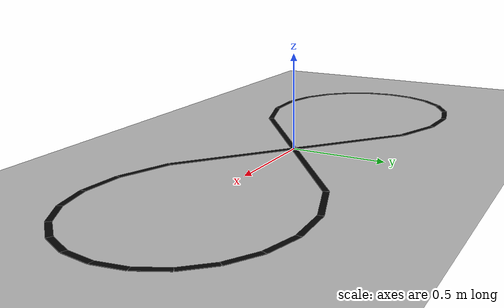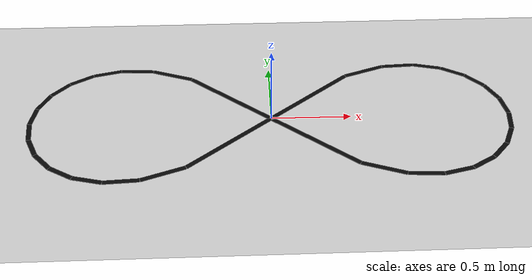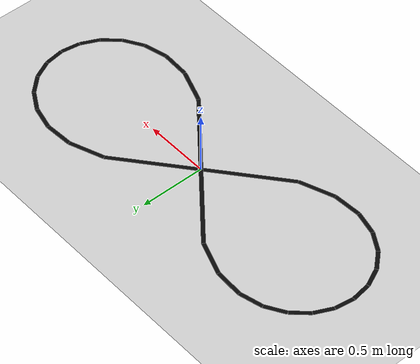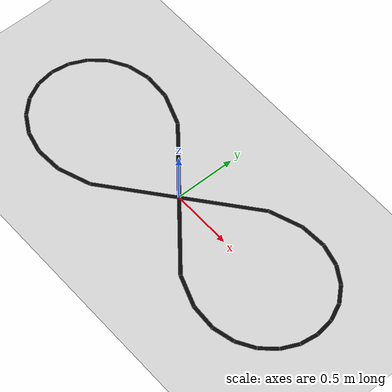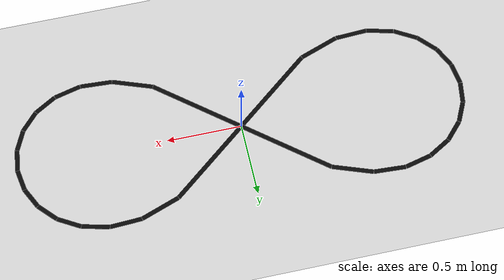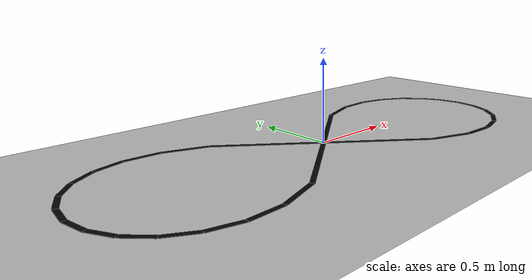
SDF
<?xml version="1.0" ?>
<sdf version="1.9">
  <world name="line_figure8_world">

    <physics name="1ms" type="ignored">
      <max_step_size>0.001</max_step_size>
      <real_time_factor>1.0</real_time_factor>
    </physics>

    <plugin filename="ignition-gazebo-physics-system" name="ignition::gazebo::systems::Physics"/>
    <plugin filename="ignition-gazebo-user-commands-system" name="ignition::gazebo::systems::UserCommands"/>
    <plugin filename="ignition-gazebo-scene-broadcaster-system" name="ignition::gazebo::systems::SceneBroadcaster"/>
    <plugin filename="ignition-gazebo-sensors-system" name="ignition::gazebo::systems::Sensors">
      <render_engine>ogre2</render_engine>
    </plugin>
    <plugin filename="ignition-gazebo-imu-system" name="ignition::gazebo::systems::Imu"/>

    <scene>
      <ambient>0.6 0.6 0.6 1</ambient>
      <background>0.7 0.7 0.75 1</background>
    </scene>

    <light type="directional" name="sun">
      <cast_shadows>true</cast_shadows>
      <pose>0 0 10 0 0 0</pose>
      <diffuse>0.9 0.9 0.9 1</diffuse>
      <specular>0.2 0.2 0.2 1</specular>
      <attenuation>
        <range>1000</range>
        <constant>0.9</constant>
        <linear>0.01</linear>
        <quadratic>0.001</quadratic>
      </attenuation>
      <direction>-0.3 0.1 -0.95</direction>
    </light>

    <!-- Fill light from the opposite side keeps the LAB line threshold stable. -->
    <light type="directional" name="fill">
      <cast_shadows>false</cast_shadows>
      <pose>0 0 5 0 0 0</pose>
      <diffuse>0.4 0.4 0.4 1</diffuse>
      <specular>0.0 0.0 0.0 1</specular>
      <direction>0.6 -0.3 -0.7</direction>
    </light>

    <model name="ground_plane">
      <static>true</static>
      <link name="link">
        <collision name="collision">
          <geometry>
            <plane>
              <normal>0 0 1</normal>
              <size>50 50</size>
            </plane>
          </geometry>
          <surface>
            <friction>
              <ode>
                <mu>1.0</mu>
                <mu2>1.0</mu2>
              </ode>
            </friction>
          </surface>
        </collision>
        <visual name="visual">
          <geometry>
            <plane>
              <normal>0 0 1</normal>
              <size>50 50</size>
            </plane>
          </geometry>
          <material>
            <ambient>0.8 0.8 0.8 1</ambient>
            <diffuse>0.8 0.8 0.8 1</diffuse>
            <specular>0.8 0.8 0.8 1</specular>
          </material>
        </visual>
      </link>
    </model>

    <model name="figure8_line">
      <static>true</static>
      <link name="link">
          <visual name="segment_000">
            <pose>0.256073415 -0.210154020 0.001000000 0 0 -0.687223393</pose>
            <geometry>
              <box><size>0.662535452 0.030000000 0.002000000</size></box>
            </geometry>
            <material>
              <ambient>0.02 0.02 0.02 1</ambient>
              <diffuse>0.03 0.03 0.03 1</diffuse>
              <specular>0.01 0.01 0.01 1</specular>
            </material>
          </visual>
          <visual name="segment_001">
            <pose>0.641842548 -0.467916715 0.001000000 0 0 -0.351808885</pose>
            <geometry>
              <box><size>0.276315509 0.030000000 0.002000000</size></box>
            </geometry>
            <material>
              <ambient>0.02 0.02 0.02 1</ambient>
              <diffuse>0.03 0.03 0.03 1</diffuse>
              <specular>0.01 0.01 0.01 1</specular>
            </material>
          </visual>
          <visual name="segment_002">
            <pose>0.878784620 -0.521284962 0.001000000 0 0 -0.053652606</pose>
            <geometry>
              <box><size>0.214801797 0.030000000 0.002000000</size></box>
            </geometry>
            <material>
              <ambient>0.02 0.02 0.02 1</ambient>
              <diffuse>0.03 0.03 0.03 1</diffuse>
              <specular>0.01 0.01 0.01 1</specular>
            </material>
          </visual>
          <visual name="segment_003">
            <pose>1.075680727 -0.504870113 0.001000000 0 0 0.242478334</pose>
            <geometry>
              <box><size>0.184702824 0.030000000 0.002000000</size></box>
            </geometry>
            <material>
              <ambient>0.02 0.02 0.02 1</ambient>
              <diffuse>0.03 0.03 0.03 1</diffuse>
              <specular>0.01 0.01 0.01 1</specular>
            </material>
          </visual>
          <visual name="segment_004">
            <pose>1.237104455 -0.439869810 0.001000000 0 0 0.537972529</pose>
            <geometry>
              <box><size>0.167159318 0.030000000 0.002000000</size></box>
            </geometry>
            <material>
              <ambient>0.02 0.02 0.02 1</ambient>
              <diffuse>0.03 0.03 0.03 1</diffuse>
              <specular>0.01 0.01 0.01 1</specular>
            </material>
          </visual>
          <visual name="segment_005">
            <pose>1.361477410 -0.339160607 0.001000000 0 0 0.833191517</pose>
            <geometry>
              <box><size>0.156424192 0.030000000 0.002000000</size></box>
            </geometry>
            <material>
              <ambient>0.02 0.02 0.02 1</ambient>
              <diffuse>0.03 0.03 0.03 1</diffuse>
              <specular>0.01 0.01 0.01 1</specular>
            </material>
          </visual>
          <visual name="segment_006">
            <pose>1.446221136 -0.213441806 0.001000000 0 0 1.128275814</pose>
            <geometry>
              <box><size>0.150132428 0.030000000 0.002000000</size></box>
            </geometry>
            <material>
              <ambient>0.02 0.02 0.02 1</ambient>
              <diffuse>0.03 0.03 0.03 1</diffuse>
              <specular>0.01 0.01 0.01 1</specular>
            </material>
          </visual>
          <visual name="segment_007">
            <pose>1.489182940 -0.072803165 0.001000000 0 0 1.423295887</pose>
            <geometry>
              <box><size>0.147204750 0.030000000 0.002000000</size></box>
            </geometry>
            <material>
              <ambient>0.02 0.02 0.02 1</ambient>
              <diffuse>0.03 0.03 0.03 1</diffuse>
              <specular>0.01 0.01 0.01 1</specular>
            </material>
          </visual>
          <visual name="segment_008">
            <pose>1.489182940 0.072803165 0.001000000 0 0 1.718296767</pose>
            <geometry>
              <box><size>0.147204750 0.030000000 0.002000000</size></box>
            </geometry>
            <material>
              <ambient>0.02 0.02 0.02 1</ambient>
              <diffuse>0.03 0.03 0.03 1</diffuse>
              <specular>0.01 0.01 0.01 1</specular>
            </material>
          </visual>
          <visual name="segment_009">
            <pose>1.446221136 0.213441806 0.001000000 0 0 2.013316840</pose>
            <geometry>
              <box><size>0.150132428 0.030000000 0.002000000</size></box>
            </geometry>
            <material>
              <ambient>0.02 0.02 0.02 1</ambient>
              <diffuse>0.03 0.03 0.03 1</diffuse>
              <specular>0.01 0.01 0.01 1</specular>
            </material>
          </visual>
          <visual name="segment_010">
            <pose>1.361477410 0.339160607 0.001000000 0 0 2.308401137</pose>
            <geometry>
              <box><size>0.156424192 0.030000000 0.002000000</size></box>
            </geometry>
            <material>
              <ambient>0.02 0.02 0.02 1</ambient>
              <diffuse>0.03 0.03 0.03 1</diffuse>
              <specular>0.01 0.01 0.01 1</specular>
            </material>
          </visual>
          <visual name="segment_011">
            <pose>1.237104455 0.439869810 0.001000000 0 0 2.603620124</pose>
            <geometry>
              <box><size>0.167159318 0.030000000 0.002000000</size></box>
            </geometry>
            <material>
              <ambient>0.02 0.02 0.02 1</ambient>
              <diffuse>0.03 0.03 0.03 1</diffuse>
              <specular>0.01 0.01 0.01 1</specular>
            </material>
          </visual>
          <visual name="segment_012">
            <pose>1.075680727 0.504870113 0.001000000 0 0 2.899114319</pose>
            <geometry>
              <box><size>0.184702824 0.030000000 0.002000000</size></box>
            </geometry>
            <material>
              <ambient>0.02 0.02 0.02 1</ambient>
              <diffuse>0.03 0.03 0.03 1</diffuse>
              <specular>0.01 0.01 0.01 1</specular>
            </material>
          </visual>
          <visual name="segment_013">
            <pose>0.878784620 0.521284962 0.001000000 0 0 -3.087940048</pose>
            <geometry>
              <box><size>0.214801797 0.030000000 0.002000000</size></box>
            </geometry>
            <material>
              <ambient>0.02 0.02 0.02 1</ambient>
              <diffuse>0.03 0.03 0.03 1</diffuse>
              <specular>0.01 0.01 0.01 1</specular>
            </material>
          </visual>
          <visual name="segment_014">
            <pose>0.641842548 0.467916715 0.001000000 0 0 -2.789783769</pose>
            <geometry>
              <box><size>0.276315509 0.030000000 0.002000000</size></box>
            </geometry>
            <material>
              <ambient>0.02 0.02 0.02 1</ambient>
              <diffuse>0.03 0.03 0.03 1</diffuse>
              <specular>0.01 0.01 0.01 1</specular>
            </material>
          </visual>
          <visual name="segment_015">
            <pose>0.256073415 0.210154020 0.001000000 0 0 -2.454369261</pose>
            <geometry>
              <box><size>0.662535452 0.030000000 0.002000000</size></box>
            </geometry>
            <material>
              <ambient>0.02 0.02 0.02 1</ambient>
              <diffuse>0.03 0.03 0.03 1</diffuse>
              <specular>0.01 0.01 0.01 1</specular>
            </material>
          </visual>
          <visual name="segment_016">
            <pose>-0.256073415 0.210154020 0.001000000 0 0 2.454369261</pose>
            <geometry>
              <box><size>0.662535452 0.030000000 0.002000000</size></box>
            </geometry>
            <material>
              <ambient>0.02 0.02 0.02 1</ambient>
              <diffuse>0.03 0.03 0.03 1</diffuse>
              <specular>0.01 0.01 0.01 1</specular>
            </material>
          </visual>
          <visual name="segment_017">
            <pose>-0.641842548 0.467916715 0.001000000 0 0 2.789783769</pose>
            <geometry>
              <box><size>0.276315509 0.030000000 0.002000000</size></box>
            </geometry>
            <material>
              <ambient>0.02 0.02 0.02 1</ambient>
              <diffuse>0.03 0.03 0.03 1</diffuse>
              <specular>0.01 0.01 0.01 1</specular>
            </material>
          </visual>
          <visual name="segment_018">
            <pose>-0.878784620 0.521284962 0.001000000 0 0 3.087940048</pose>
            <geometry>
              <box><size>0.214801797 0.030000000 0.002000000</size></box>
            </geometry>
            <material>
              <ambient>0.02 0.02 0.02 1</ambient>
              <diffuse>0.03 0.03 0.03 1</diffuse>
              <specular>0.01 0.01 0.01 1</specular>
            </material>
          </visual>
          <visual name="segment_019">
            <pose>-1.075680727 0.504870113 0.001000000 0 0 -2.899114319</pose>
            <geometry>
              <box><size>0.184702824 0.030000000 0.002000000</size></box>
            </geometry>
            <material>
              <ambient>0.02 0.02 0.02 1</ambient>
              <diffuse>0.03 0.03 0.03 1</diffuse>
              <specular>0.01 0.01 0.01 1</specular>
            </material>
          </visual>
          <visual name="segment_020">
            <pose>-1.237104455 0.439869810 0.001000000 0 0 -2.603620124</pose>
            <geometry>
              <box><size>0.167159318 0.030000000 0.002000000</size></box>
            </geometry>
            <material>
              <ambient>0.02 0.02 0.02 1</ambient>
              <diffuse>0.03 0.03 0.03 1</diffuse>
              <specular>0.01 0.01 0.01 1</specular>
            </material>
          </visual>
          <visual name="segment_021">
            <pose>-1.361477410 0.339160607 0.001000000 0 0 -2.308401137</pose>
            <geometry>
              <box><size>0.156424192 0.030000000 0.002000000</size></box>
            </geometry>
            <material>
              <ambient>0.02 0.02 0.02 1</ambient>
              <diffuse>0.03 0.03 0.03 1</diffuse>
              <specular>0.01 0.01 0.01 1</specular>
            </material>
          </visual>
          <visual name="segment_022">
            <pose>-1.446221136 0.213441806 0.001000000 0 0 -2.013316840</pose>
            <geometry>
              <box><size>0.150132428 0.030000000 0.002000000</size></box>
            </geometry>
            <material>
              <ambient>0.02 0.02 0.02 1</ambient>
              <diffuse>0.03 0.03 0.03 1</diffuse>
              <specular>0.01 0.01 0.01 1</specular>
            </material>
          </visual>
          <visual name="segment_023">
            <pose>-1.489182940 0.072803165 0.001000000 0 0 -1.718296767</pose>
            <geometry>
              <box><size>0.147204750 0.030000000 0.002000000</size></box>
            </geometry>
            <material>
              <ambient>0.02 0.02 0.02 1</ambient>
              <diffuse>0.03 0.03 0.03 1</diffuse>
              <specular>0.01 0.01 0.01 1</specular>
            </material>
          </visual>
          <visual name="segment_024">
            <pose>-1.489182940 -0.072803165 0.001000000 0 0 -1.423295887</pose>
            <geometry>
              <box><size>0.147204750 0.030000000 0.002000000</size></box>
            </geometry>
            <material>
              <ambient>0.02 0.02 0.02 1</ambient>
              <diffuse>0.03 0.03 0.03 1</diffuse>
              <specular>0.01 0.01 0.01 1</specular>
            </material>
          </visual>
          <visual name="segment_025">
            <pose>-1.446221136 -0.213441806 0.001000000 0 0 -1.128275814</pose>
            <geometry>
              <box><size>0.150132428 0.030000000 0.002000000</size></box>
            </geometry>
            <material>
              <ambient>0.02 0.02 0.02 1</ambient>
              <diffuse>0.03 0.03 0.03 1</diffuse>
              <specular>0.01 0.01 0.01 1</specular>
            </material>
          </visual>
          <visual name="segment_026">
            <pose>-1.361477410 -0.339160607 0.001000000 0 0 -0.833191517</pose>
            <geometry>
              <box><size>0.156424192 0.030000000 0.002000000</size></box>
            </geometry>
            <material>
              <ambient>0.02 0.02 0.02 1</ambient>
              <diffuse>0.03 0.03 0.03 1</diffuse>
              <specular>0.01 0.01 0.01 1</specular>
            </material>
          </visual>
          <visual name="segment_027">
            <pose>-1.237104455 -0.439869810 0.001000000 0 0 -0.537972529</pose>
            <geometry>
              <box><size>0.167159318 0.030000000 0.002000000</size></box>
            </geometry>
            <material>
              <ambient>0.02 0.02 0.02 1</ambient>
              <diffuse>0.03 0.03 0.03 1</diffuse>
              <specular>0.01 0.01 0.01 1</specular>
            </material>
          </visual>
          <visual name="segment_028">
            <pose>-1.075680727 -0.504870113 0.001000000 0 0 -0.242478334</pose>
            <geometry>
              <box><size>0.184702824 0.030000000 0.002000000</size></box>
            </geometry>
            <material>
              <ambient>0.02 0.02 0.02 1</ambient>
              <diffuse>0.03 0.03 0.03 1</diffuse>
              <specular>0.01 0.01 0.01 1</specular>
            </material>
          </visual>
          <visual name="segment_029">
            <pose>-0.878784620 -0.521284962 0.001000000 0 0 0.053652606</pose>
            <geometry>
              <box><size>0.214801797 0.030000000 0.002000000</size></box>
            </geometry>
            <material>
              <ambient>0.02 0.02 0.02 1</ambient>
              <diffuse>0.03 0.03 0.03 1</diffuse>
              <specular>0.01 0.01 0.01 1</specular>
            </material>
          </visual>
          <visual name="segment_030">
            <pose>-0.641842548 -0.467916715 0.001000000 0 0 0.351808885</pose>
            <geometry>
              <box><size>0.276315509 0.030000000 0.002000000</size></box>
            </geometry>
            <material>
              <ambient>0.02 0.02 0.02 1</ambient>
              <diffuse>0.03 0.03 0.03 1</diffuse>
              <specular>0.01 0.01 0.01 1</specular>
            </material>
          </visual>
          <visual name="segment_031">
            <pose>-0.256073415 -0.210154020 0.001000000 0 0 0.687223393</pose>
            <geometry>
              <box><size>0.662535452 0.030000000 0.002000000</size></box>
            </geometry>
            <material>
              <ambient>0.02 0.02 0.02 1</ambient>
              <diffuse>0.03 0.03 0.03 1</diffuse>
              <specular>0.01 0.01 0.01 1</specular>
            </material>
          </visual>
      </link>
    </model>
  </world>
</sdf>
